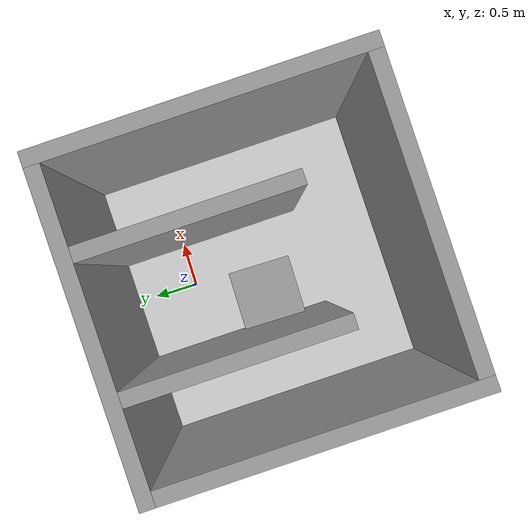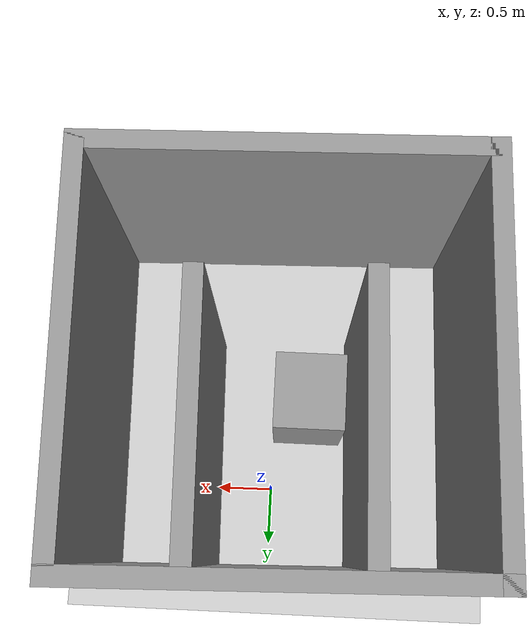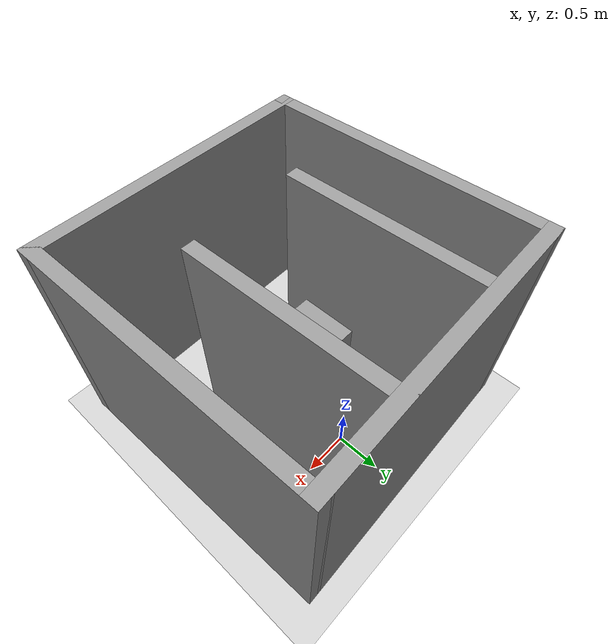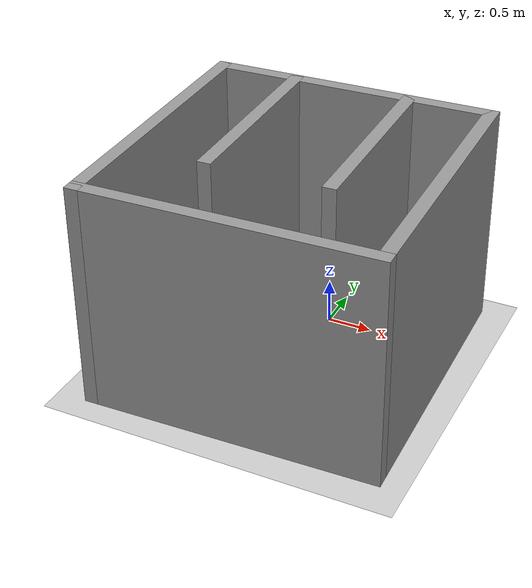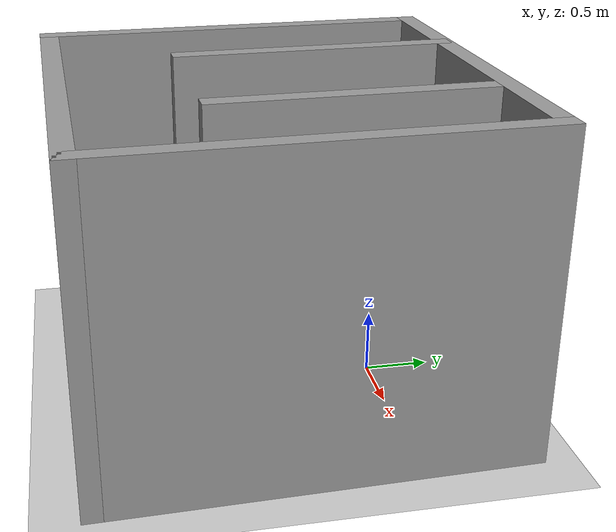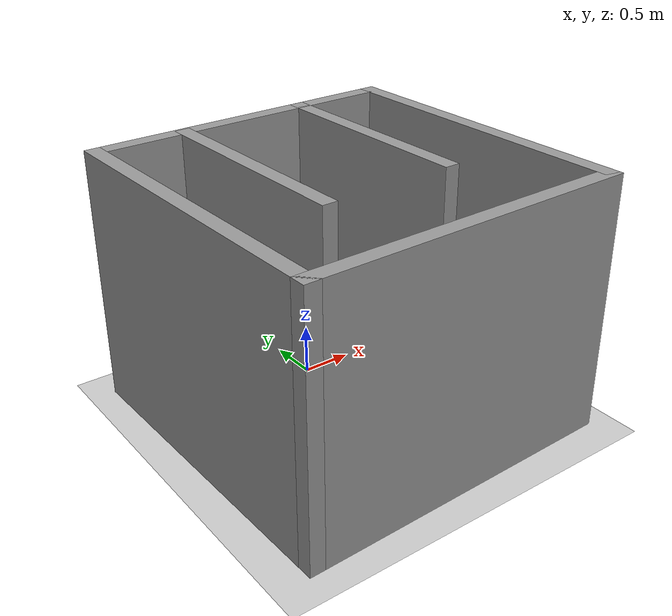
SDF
<sdf version="1.6">
 <world name="default">
  <light name="sun" type="directional">
   <pose>0 0 10 0 -0 0</pose>
   <diffuse>0.8 0.8 0.8 1</diffuse>
   <specular>0.2 0.2 0.2 1</specular>
   <attenuation>
    <range>1000</range>
    <constant>0.9</constant>
    <linear>0.01</linear>
    <quadratic>0.001</quadratic>
   </attenuation>
   <direction>-0.5 0.1 -0.9</direction>
  </light>
  <model name="ground_plane">
   <static>1</static>
   <link name="link">
    <collision name="collision">
     <geometry><plane><normal>0 0 1</normal><size>100 100</size></plane></geometry>
     <surface>
      <contact><collide_bitmask>65535</collide_bitmask></contact>
      <friction><ode><mu>100</mu><mu2>50</mu2></ode></friction>
     </surface>
    </collision>
    <visual name="visual">
     <cast_shadows>0</cast_shadows>
     <geometry><plane><normal>0 0 1</normal><size>100 100</size></plane></geometry>
     <material>
      <script><uri>file://media/materials/scripts/gazebo.material</uri><name>Gazebo/Grey</name></script>
     </material>
    </visual>
   </link>
  </model>
  <gravity>0 0 -9.8</gravity>
  <magnetic_field>6e-06 2.3e-05 -4.2e-05</magnetic_field>
  <atmosphere type="adiabatic"/>
  <physics name="default_physics" default="0" type="ode">
   <max_step_size>0.001</max_step_size>
   <real_time_factor>1</real_time_factor>
   <real_time_update_rate>1000</real_time_update_rate>
  </physics>
  <scene><ambient>0.4 0.4 0.4 1</ambient><background>0.7 0.7 0.7 1</background><shadows>1</shadows></scene>
  <audio><device>default</device></audio>
  <spherical_coordinates>
   <surface_model>EARTH_WGS84</surface_model>
   <latitude_deg>0</latitude_deg>
   <longitude_deg>0</longitude_deg>
   <elevation>0</elevation>
   <heading_deg>0</heading_deg>
  </spherical_coordinates>
  <model name="maze_3">
   <pose>-0.07776 -0.770869 0 0 -0 -3.11605</pose>
   <link name="Wall_0">
    <collision name="Wall_0_Collision">
     <geometry><box><size>3.25 0.15 2.5</size></box></geometry>
     <pose>0 0 1.25 0 -0 0</pose>
    </collision>
    <visual name="Wall_0_Visual">
     <pose>0 0 1.25 0 -0 0</pose>
     <geometry><box><size>3.25 0.15 2.5</size></box></geometry>
     <material>
      <script><uri>file://media/materials/scripts/gazebo.material</uri><name>Gazebo/Grey</name></script>
      <ambient>1 1 1 1</ambient>
     </material>
     <meta><layer>0</layer></meta>
    </visual>
    <pose>-1.55 0 0 0 -0 -1.5708</pose>
   </link>
   <link name="Wall_1">
    <collision name="Wall_1_Collision">
     <geometry><box><size>3.25 0.15 2.5</size></box></geometry>
     <pose>0 0 1.25 0 -0 0</pose>
    </collision>
    <visual name="Wall_1_Visual">
     <pose>0 0 1.25 0 -0 0</pose>
     <geometry><box><size>3.25 0.15 2.5</size></box></geometry>
     <material>
      <script><uri>file://media/materials/scripts/gazebo.material</uri><name>Gazebo/Grey</name></script>
      <ambient>1 1 1 1</ambient>
     </material>
     <meta><layer>0</layer></meta>
    </visual>
    <pose>0 -1.55 0 0 -0 0</pose>
   </link>
   <link name="Wall_2">
    <collision name="Wall_2_Collision">
     <geometry><box><size>3.25 0.15 2.5</size></box></geometry>
     <pose>0 0 1.25 0 -0 0</pose>
    </collision>
    <visual name="Wall_2_Visual">
     <pose>0 0 1.25 0 -0 0</pose>
     <geometry><box><size>3.25 0.15 2.5</size></box></geometry>
     <material>
      <script><uri>file://media/materials/scripts/gazebo.material</uri><name>Gazebo/Grey</name></script>
      <ambient>1 1 1 1</ambient>
     </material>
     <meta><layer>0</layer></meta>
    </visual>
    <pose>1.55 0 0 0 -0 1.5708</pose>
   </link>
   <link name="Wall_3">
    <collision name="Wall_3_Collision">
     <geometry><box><size>3.25 0.15 2.5</size></box></geometry>
     <pose>0 0 1.25 0 -0 0</pose>
    </collision>
    <visual name="Wall_3_Visual">
     <pose>0 0 1.25 0 -0 0</pose>
     <geometry><box><size>3.25 0.15 2.5</size></box></geometry>
     <material>
      <script><uri>file://media/materials/scripts/gazebo.material</uri><name>Gazebo/Grey</name></script>
      <ambient>1 1 1 1</ambient>
     </material>
     <meta><layer>0</layer></meta>
    </visual>
    <pose>0 1.55 0 0 -0 3.14159</pose>
   </link>
   <link name="Wall_5">
    <collision name="Wall_5_Collision">
     <geometry><box><size>2.25 0.15 2.5</size></box></geometry>
     <pose>0 0 1.25 0 -0 0</pose>
    </collision>
    <visual name="Wall_5_Visual">
     <pose>0 0 1.25 0 -0 0</pose>
     <geometry><box><size>2.25 0.15 2.5</size></box></geometry>
     <material>
      <script><uri>file://media/materials/scripts/gazebo.material</uri><name>Gazebo/Grey</name></script>
      <ambient>1 1 1 1</ambient>
     </material>
     <meta><layer>0</layer></meta>
    </visual>
    <pose>-0.644889 -0.49749 0 0 -0 1.5708</pose>
   </link>
   <link name="Wall_8">
    <collision name="Wall_8_Collision">
     <geometry><box><size>2.25 0.15 2.5</size></box></geometry>
     <pose>0 0 1.25 0 -0 0</pose>
    </collision>
    <visual name="Wall_8_Visual">
     <pose>0 0 1.25 0 -0 0</pose>
     <geometry><box><size>2.25 0.15 2.5</size></box></geometry>
     <material>
      <script><uri>file://media/materials/scripts/gazebo.material</uri><name>Gazebo/Grey</name></script>
      <ambient>1 1 1 1</ambient>
     </material>
     <meta><layer>0</layer></meta>
    </visual>
    <pose>0.662493 -0.477376 0 0 -0 1.5708</pose>
   </link>
   <static>1</static>
  </model>
  <model name="unit_box">
   <pose>-0.312134 -0.784909 0.499996 7e-06 6e-06 -0.0007</pose>
   <link name="link">
    <inertial>
     <mass>1</mass>
     <inertia>
      <ixx>0.166667</ixx>
      <ixy>0</ixy>
      <ixz>0</ixz>
      <iyy>0.166667</iyy>
      <iyz>0</iyz>
      <izz>0.166667</izz>
     </inertia>
    </inertial>
    <collision name="collision"><geometry><box><size>0.61942 0.663042 1</size></box></geometry></collision>
    <visual name="visual">
     <geometry><box><size>0.61942 0.663042 1</size></box></geometry>
     <material>
      <script><name>Gazebo/Grey</name><uri>file://media/materials/scripts/gazebo.material</uri></script>
     </material>
    </visual>
   </link>
  </model>
 </world>
</sdf>
